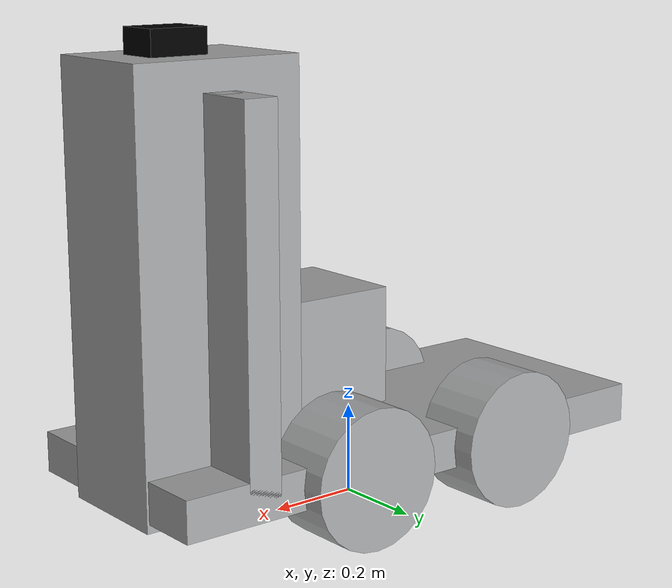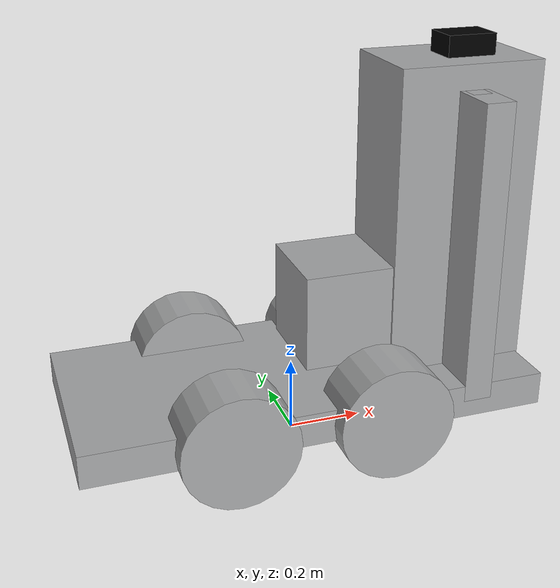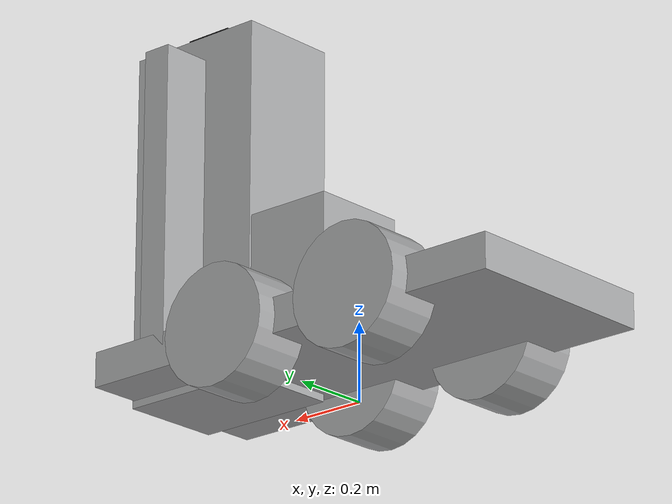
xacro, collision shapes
<?xml version="1.0"?>
<robot xmlns:xacro="http://www.ros.org/wiki/xacro"  name="opsrey_ros">

	<xacro:arg name="year" default="" />
	<xacro:arg name="use_hardware" default="robot" />

	<xacro:include filename="colors.xacro" />
	<xacro:include filename="inertial_macros.xacro" />

    <xacro:macro name="robot_year" params="year">
        <xacro:include filename="robot${year}_core.xacro" />
        <xacro:include filename="robot${year}_ros2_control.xacro" />
	    <xacro:ros2_control use_hardware="$(arg use_hardware)"/>
    </xacro:macro>

    <xacro:macro name="gazebo" params="use_hardware">
      <xacro:if value="${use_hardware == 'ign_gazebo'}">
	    <xacro:include filename="gazebo_plugins.xacro" />
      </xacro:if>
    </xacro:macro>

	<xacro:robot_year year="$(arg year)"/>
	<xacro:gazebo use_hardware="$(arg use_hardware)"/>

</robot>

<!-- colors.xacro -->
<robot xmlns:xacro="http://www.ros.org/wiki/xacro">

  <!-- https://www.unf.edu/brand/colors.html
       https://rgbcolorpicker.com/0-1 -->

  <material name="black">
    <color rgba="0 0 0 1"/>
  </material>

  <!-- osprey blue -->
  <material name="blue">
    <color rgba="0.039 0.137 0.247 1"/>
  </material>

  <!-- osprey gray -->
  <material name="gray">
    <color rgba="0.655 0.659 0.663 1"/>
  </material>

  <!-- unf leaf -->
  <material name="green">
    <color rgba="0.463 0.737 0.263 1"/>
  </material>

  <!-- unf sunset -->
  <material name="red">
    <color rgba="0.769 0.122 0.294 1"/>
  </material>

  <material name="white">
    <color rgba="1 1 1 1"/>
  </material>

  <!-- unf sunshine -->
  <material name="yellow">
    <color rgba="1 0.776 0.184 1"/>
  </material>

</robot>

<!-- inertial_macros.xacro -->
<robot xmlns:xacro="http://www.ros.org/wiki/xacro" >

    <xacro:macro name="inertial_box" params="mass x y z *origin">
        <inertial>
            <xacro:insert_block name="origin"/>
            <mass value="${mass}" />
            <inertia ixx="${(1/12) * mass * (y*y+z*z)}" ixy="0.0" ixz="0.0"
                    iyy="${(1/12) * mass * (x*x+z*z)}" iyz="0.0"
                    izz="${(1/12) * mass * (x*x+y*y)}" />
        </inertial>
    </xacro:macro>

    <xacro:macro name="inertial_cylinder" params="mass length radius *origin">
        <inertial>
            <xacro:insert_block name="origin"/>
            <mass value="${mass}" />
            <inertia ixx="${(1/12) * mass * (3*(radius*radius + 0.00064516) + length*length)}" ixy="0.0" ixz="0.0"
                    iyy="${(1/12) * mass * (3*(radius*radius + 0.00064516) + length*length)}" iyz="0.0"
                    izz="${(1/2) * mass * (radius*radius + 0.00064516)}" />
        </inertial>
    </xacro:macro>

</robot>

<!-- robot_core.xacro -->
<robot xmlns:xacro="http://www.ros.org/wiki/xacro">

    <xacro:property name="collision_multiplier" value="1.5" />

    <xacro:property name="limit_effort" value="100" />
    <xacro:property name="limit_velocity" value="10" />

    <!-- Values in meters -->
    <xacro:property name="bucket_length" value="0.3556" /> <!-- depth -->
    <xacro:property name="bucket_height" value="0.254" />
    <xacro:property name="bucket_width" value="0.254" />

    <xacro:property name="bucket_ladder_scale" value="1 1 1" />
    <xacro:property name="bucket_ladder_rpy" value="-${pi/2} ${pi/2} 0" />
    <xacro:property name="bucket_ladder_xyz" value="${buckets_length} -${ladder_width + wheel_gap/4} ${buckets_height - chassis_height/1.25}" />

    <xacro:property name="buckets_length" value="0.254" /> <!-- depth -->
    <xacro:property name="buckets_height" value="0.9144" />
    <xacro:property name="buckets_width" value="0.1778" />

    <xacro:property name="chassis_length" value="0.8128" />
    <xacro:property name="chassis_height" value="0.0889" />
    <xacro:property name="chassis_width" value="0.3556" />

    <xacro:property name="ladder_length" value="0.0508" /> <!-- depth -->
    <xacro:property name="ladder_height" value="0.7874" />
    <xacro:property name="ladder_width" value="${chassis_width}" />
    <xacro:property name="ladder_offset" value="${chassis_length/2 + buckets_width/10}" />
    <xacro:property name="ladder_xyz" value="${buckets_length} -${ladder_width + wheel_gap/4} ${buckets_height - chassis_height/2}" />

    <xacro:property name="lidar_length" value="0.12954" />
    <xacro:property name="lidar_height" value="0.07874" />
    <xacro:property name="lidar_width" value="0.09906" />

    <xacro:property name="wheel_gap" value="0.0127" />
    <xacro:property name="wheel_length" value="0.1016" />
    <xacro:property name="wheel_radius" value="0.1524" />
    <xacro:property name="wheel_mass" value="0.0624" />
    <xacro:property name="wheel_mesh_file" value="file://$(find osprey_ros)/meshes/wheel.dae" />
    <xacro:property name="wheel_mesh_scale" value="0.001 0.001 0.001" />
    <xacro:property name="wheel_offset_front" value="${-chassis_length/2 + 0.1778}" />
    <xacro:property name="wheel_offset_rear" value="${chassis_length/2 - 0.2286}" />
    <xacro:property name="wheel_offset_side" value="${wheel_length/2 + chassis_width/2 + wheel_gap}" />

    <link name="base_link"></link>

    <joint name="base_footprint_joint" type="fixed">
        <parent link="base_link"/>
        <child link="base_footprint"/>
    </joint>
    <link name="base_footprint">
        <parent link="base_link"/>
    </link>

    <!-- Main Body/Chassis -->
    <joint name="chassis_joint" type="fixed">
        <parent link="base_link"/>
        <origin xyz="0 0 ${wheel_radius}" rpy="0 0 0"/>
        <child link="chassis"/>
    </joint>
    <link name="chassis">
        <collision>
            <geometry>
                <box size="${chassis_length * collision_multiplier} ${chassis_width * collision_multiplier} ${chassis_height}"/>
            </geometry>
        </collision>
        <visual>
            <origin xyz="-${chassis_length/2} ${chassis_length/2 - chassis_height - wheel_gap/2} -${chassis_width/2}" rpy="${pi/2} 0 0"/>
            <geometry>
                <mesh filename="file://$(find osprey_ros)/meshes/chassis.dae" scale="0.8 0.8 0.8" />
            </geometry>
            <material name="gray"/>
        </visual>
        <xacro:inertial_box mass="2.5" x="${chassis_length}" y="${chassis_width}" z="${chassis_height}">
            <origin xyz="0 0 0" rpy="0 0 0"/>
        </xacro:inertial_box>
    </link>

    <!-- Front Left Wheel -->
    <joint name="front_left_wheel_joint" type="continuous">
        <parent link="chassis"/>
        <child link="front_left_wheel"/>
        <origin xyz="${wheel_offset_front} ${wheel_offset_side} 0" rpy="-${pi/2} 0 0"/>
        <axis xyz="0 0 1"/>
        <limit effort="${limit_effort}" velocity="${limit_velocity}"/>
    </joint>
    <link name="front_left_wheel">
        <collision>
            <geometry>
                <cylinder length="${wheel_length * collision_multiplier}" radius="${wheel_radius}" />
            </geometry>
        </collision>
        <visual>
            <origin xyz="-${wheel_radius} -${wheel_radius} ${wheel_length/2}" rpy="-${pi/2} 0 0"/>
            <geometry>
                <mesh filename="${wheel_mesh_file}" scale="${wheel_mesh_scale}" />
            </geometry>
            <material name="gray"/>
        </visual>
        <xacro:inertial_cylinder mass="${wheel_mass}" length="${wheel_length}" radius="${wheel_radius}">
            <origin xyz="0 0 0" rpy="0 0 0"/>
        </xacro:inertial_cylinder>
    </link>

    <!-- Front Right Wheel -->
    <joint name="front_right_wheel_joint" type="continuous">
        <parent link="chassis"/>
        <child link="front_right_wheel"/>
        <origin xyz="${wheel_offset_front} -${wheel_offset_side} 0" rpy="${pi/2} 0 0"/>
        <axis xyz="0 0 -1"/>
        <limit effort="${limit_effort}" velocity="${limit_velocity}"/>
    </joint>
    <link name="front_right_wheel">
        <collision>
            <geometry>
                <cylinder length="${wheel_length * collision_multiplier}" radius="${wheel_radius}" />
            </geometry>
        </collision>
        <visual>
            <origin xyz="-${wheel_radius} ${wheel_radius} -${wheel_length/2}" rpy="${pi/2} 0 0"/>
            <geometry>
                <mesh filename="${wheel_mesh_file}" scale="${wheel_mesh_scale}" />
            </geometry>
            <material name="gray"/>
        </visual>
        <xacro:inertial_cylinder mass="${wheel_mass}" length="${wheel_length}" radius="${wheel_radius}">
            <origin xyz="0 0 0" rpy="0 0 0"/>
        </xacro:inertial_cylinder>
    </link>

    <!-- Rear Left Wheel -->
    <joint name="rear_left_wheel_joint" type="continuous">
        <parent link="chassis"/>
        <child link="rear_left_wheel"/>
        <origin xyz="${wheel_offset_rear} ${wheel_offset_side} 0" rpy="-${pi/2} 0 0"/>
        <axis xyz="0 0 1"/>
        <limit effort="${limit_effort}" velocity="${limit_velocity}"/>
    </joint>
    <link name="rear_left_wheel">
        <collision>
            <geometry>
                <cylinder length="${wheel_length * collision_multiplier}" radius="${wheel_radius}" />
            </geometry>
        </collision>
        <visual>
            <origin xyz="-${wheel_radius} -${wheel_radius} ${wheel_length/2}" rpy="-${pi/2} 0 0"/>
            <geometry>
                <mesh filename="${wheel_mesh_file}" scale="${wheel_mesh_scale}" />
            </geometry>
            <material name="gray"/>
        </visual>
        <xacro:inertial_cylinder mass="${wheel_mass}" length="${wheel_length}" radius="${wheel_radius}">
            <origin xyz="0 0 0" rpy="0 0 0"/>
        </xacro:inertial_cylinder>
    </link>

    <!-- Rear Right Wheel -->
    <joint name="rear_right_wheel_joint" type="continuous">
        <parent link="chassis"/>
        <child link="rear_right_wheel"/>
        <origin xyz="${wheel_offset_rear} -${wheel_offset_side} 0" rpy="${pi/2} 0 0"/>
        <axis xyz="0 0 -1"/>
        <limit effort="${limit_effort}" velocity="${limit_velocity}"/>
    </joint>
    <link name="rear_right_wheel">
        <collision>
            <geometry>
                <cylinder length="${wheel_length * collision_multiplier}" radius="${wheel_radius}" />
            </geometry>
        </collision>
        <visual>
            <origin xyz="-${wheel_radius} ${wheel_radius} -${wheel_length/2}" rpy="${pi/2} 0 0"/>
            <geometry>
                <mesh filename="${wheel_mesh_file}" scale="${wheel_mesh_scale}" />
            </geometry>
            <material name="gray"/>
        </visual>
        <xacro:inertial_cylinder mass="${wheel_mass}" length="${wheel_length}" radius="${wheel_radius}">
            <origin xyz="0 0 0" rpy="0 0 0"/>
        </xacro:inertial_cylinder>
    </link>

    <!-- Bucket Ladder Guide Frame -->
    <joint name="bucket_ladder_frame_joint" type="revolute">
        <parent link="chassis"/>
        <child link="guide_frame"/>
        <limit lower="-0.523598775598"  upper="0"  velocity="0.1"  effort="${limit_effort}"  />
        <axis xyz="0 1 0"/>
        <origin xyz="${ladder_offset} 0 0" rpy="0 0 0"/>
    </joint>
    <link name="guide_frame">
        <collision>
            <origin xyz="0 0 ${ladder_height/2}" rpy="0 0 0"/>
            <geometry>
                <box size="${ladder_length * collision_multiplier} ${ladder_width * collision_multiplier} ${ladder_height}"/>
            </geometry>
            <material name="gray"/>
        </collision>
        <visual>
            <origin xyz="${bucket_ladder_xyz}" rpy="${bucket_ladder_rpy}"/>
            <geometry>
                <mesh filename="file://$(find osprey_ros)/meshes/bucket_ladder_guide_frame.dae" scale="${bucket_ladder_scale}" />
            </geometry>
            <material name="gray"/>
        </visual>
        <xacro:inertial_box mass="0.05" x="${ladder_length}" y="${ladder_width}" z="${ladder_height}">
            <origin xyz="0 0 ${ladder_height/2}" rpy="0 0 0"/>
        </xacro:inertial_box>
    </link>

    <!-- Bucket Ladder Lift -->
    <joint name="bucket_ladder_lift_joint" type="prismatic">
        <parent link="guide_frame"/>
        <child link="lift"/>
        <limit lower="-0.35"  upper="0"  velocity="0.1"  effort="${limit_effort}"  />
        <axis xyz="0 0 1"/>
    </joint>
    <link name="lift">
        <collision>
            <origin xyz="0 0 ${ladder_height/2}" rpy="0 0 0"/>
            <geometry>
                <box size="${ladder_length} ${ladder_width} ${ladder_height}"/>
            </geometry>
        </collision>
        <visual>
            <origin xyz="${ladder_xyz}" rpy="${bucket_ladder_rpy}"/>
            <geometry>
                <mesh filename="file://$(find osprey_ros)/meshes/bucket_ladder_lift_frame.dae" scale="${bucket_ladder_scale}" />
            </geometry>
            <material name="gray"/>
        </visual>
        <xacro:inertial_box mass="0.01" x="${ladder_length}" y="${ladder_width}" z="${ladder_height}">
            <origin xyz="0 0 ${ladder_height/2}" rpy="0 0 0"/>
        </xacro:inertial_box>
    </link>

    <!-- Bucket Ladder Buckets -->
    <joint name="bucket_ladder_buckets_joint" type="continuous">
        <parent link="lift"/>
        <child link="buckets"/>
        <axis xyz="0 0 1"/>
    </joint>
    <link name="buckets">
        <collision>
            <origin xyz="0 0 ${ladder_height/2}" rpy="0 0 0"/>
            <geometry>
                <box size="${buckets_length * collision_multiplier} ${buckets_width * collision_multiplier} ${buckets_height}"/>
            </geometry>
        </collision>
        <visual>
            <origin xyz="${ladder_xyz}" rpy="${bucket_ladder_rpy}"/>
            <geometry>
                <mesh filename="file://$(find osprey_ros)/meshes/bucket_ladder_gears.dae" scale="${bucket_ladder_scale}" />
            </geometry>
            <material name="gray"/>
        </visual>
        <xacro:inertial_box mass="0.01" x="${buckets_length}" y="${buckets_width}" z="${buckets_height}">
            <origin xyz="0 0 ${ladder_height/2}" rpy="0 0 0"/>
        </xacro:inertial_box>
    </link>

    <!-- Dump Bucket -->
    <joint name="bucket_dump_joint" type="prismatic">
        <parent link="chassis"/>
        <child link="bucket"/>
        <limit lower="0"  upper="2"  velocity="0.1"  effort="${limit_effort}"  />
        <axis xyz="0 0 1"/>
        <origin xyz="${bucket_length/2} 0 ${bucket_height/2 + chassis_height}" rpy="0 0 0"/>
    </joint>
    <link name="bucket">
        <collision>
            <geometry>
                <box size="${bucket_length} ${bucket_width} ${bucket_height}"/>
            </geometry>
        </collision>
        <visual>
            <origin xyz="${bucket_length/2} -${bucket_width/1.6} -${chassis_height}" rpy="${pi/2} 0 ${pi}"/>
            <geometry>
                <mesh filename="file://$(find osprey_ros)/meshes/dump_bucket_body.dae" scale="0.065 0.065 0.065" />
            </geometry>
            <material name="gray"/>
        </visual>
        <xacro:inertial_box mass="0.1" x="${bucket_length}" y="${bucket_width}" z="${bucket_height}">
            <origin xyz="${chassis_length/2} 0 ${bucket_height/2}" rpy="0 0 0"/>
        </xacro:inertial_box>
    </link>

    <!-- 360 Lidar -->
    <joint name="lidar_joint" type="fixed">
        <parent link="guide_frame"/>
        <child link="lidar"/>
        <axis xyz="0 0 1"/>
        <origin xyz="${ladder_length/1.5} 0 ${ladder_height + lidar_height}" rpy="0 0 0"/>
    </joint>
    <link name="lidar">
        <collision>
            <geometry>
                <box size="${lidar_length} ${lidar_width} ${lidar_height}"/>
            </geometry>
        </collision>
        <visual>
            <origin xyz="0 0 0" rpy="0 0 0"/>
            <geometry>
                <mesh filename="file://$(find osprey_ros)/meshes/rplidar.dae" scale="1 1 1" />
            </geometry>
            <material name="black"/>
        </visual>
        <xacro:inertial_box mass="0.0001" x="${lidar_length}" y="${lidar_width}" z="${ladder_height}">
            <origin xyz="${lidar_length/2} ${lidar_width/2} ${ladder_height/2}" rpy="0 0 0"/>
        </xacro:inertial_box>
    </link>

    <!-- 3D Camera -->
    <joint name="depth_camera_joint" type="fixed">
        <parent link="chassis"/>
        <child link="depth_camera"/>
        <origin xyz="${buckets_length/2 + chassis_length/2} 0 0" rpy="0 0 0"/>
    </joint>
    <link name="depth_camera">
        <visual>
            <geometry>
                <box size="0.010 0.03 0.03"/>
            </geometry>
            <material name="black"/>
        </visual>
        <visual>
            <origin xyz="0 0 0"/>
            <geometry>
                <cylinder radius="0.002" length="0.1"/>
            </geometry>
        </visual>
    </link>

</robot>
